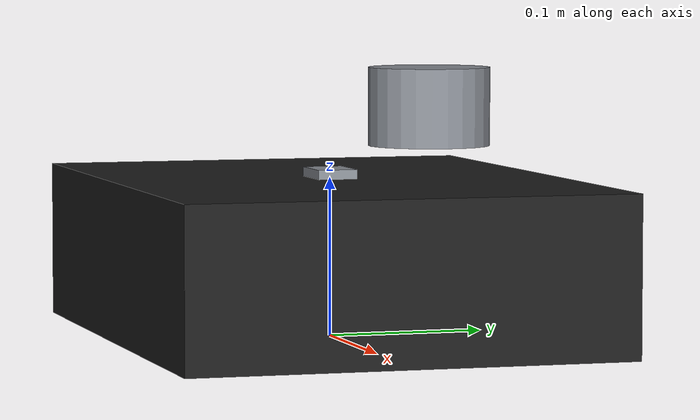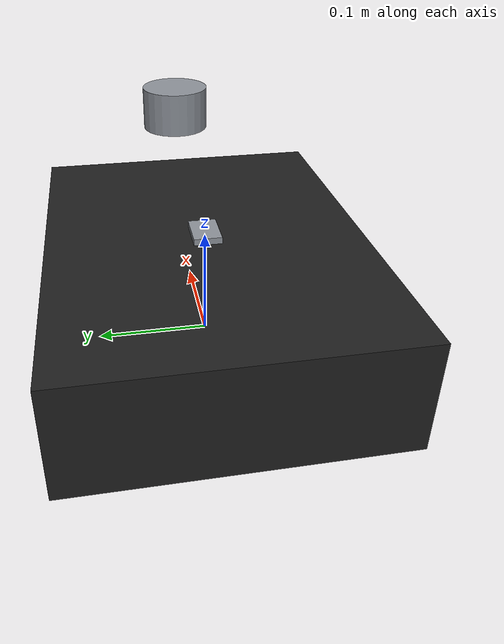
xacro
<?xml version="1.0"?>
<robot xmlns:xacro="http://www.ros.org/wiki/xacro" name="smart_car">
  <!--
    Sensor origins are explicit launch arguments.  The defaults are
    provisional placeholders from the P1 plan and must be replaced by a
    measured calibration before H4/H5 acceptance.
  -->
  <xacro:arg name="laser_xyz" default="0.200 0.000 0.155"/>
  <xacro:arg name="laser_rpy" default="0.000 0.000 0.000"/>
  <xacro:arg name="imu_xyz" default="0.000 0.000 0.100"/>
  <xacro:arg name="imu_rpy" default="0.000 0.000 0.000"/>

  <material name="chassis_black">
    <color rgba="0.12 0.12 0.12 1.0"/>
  </material>
  <material name="sensor_gray">
    <color rgba="0.55 0.57 0.60 1.0"/>
  </material>

  <link name="base_link">
    <!-- Keep the root link free of inertia so robot_state_publisher's KDL
         model remains warning-free; this P1 description is for TF/visualisation,
         not dynamics simulation. -->
    <visual>
      <origin xyz="0 0 0.05" rpy="0 0 0"/>
      <geometry><box size="0.36 0.28 0.10"/></geometry>
      <material name="chassis_black"/>
    </visual>
    <collision>
      <origin xyz="0 0 0.05" rpy="0 0 0"/>
      <geometry><box size="0.36 0.28 0.10"/></geometry>
    </collision>
  </link>

  <link name="laser_frame">
    <inertial>
      <mass value="0.01"/>
      <inertia ixx="0.000001" ixy="0" ixz="0" iyy="0.000001" iyz="0" izz="0.000001"/>
    </inertial>
    <visual>
      <geometry><cylinder radius="0.035" length="0.045"/></geometry>
      <material name="sensor_gray"/>
    </visual>
  </link>

  <link name="imu_link">
    <inertial>
      <mass value="0.01"/>
      <inertia ixx="0.000001" ixy="0" ixz="0" iyy="0.000001" iyz="0" izz="0.000001"/>
    </inertial>
    <visual>
      <geometry><box size="0.035 0.025 0.012"/></geometry>
      <material name="sensor_gray"/>
    </visual>
  </link>

  <joint name="base_to_laser" type="fixed">
    <parent link="base_link"/>
    <child link="laser_frame"/>
    <origin xyz="$(arg laser_xyz)" rpy="$(arg laser_rpy)"/>
  </joint>

  <joint name="base_to_imu" type="fixed">
    <parent link="base_link"/>
    <child link="imu_link"/>
    <origin xyz="$(arg imu_xyz)" rpy="$(arg imu_rpy)"/>
  </joint>
</robot>
